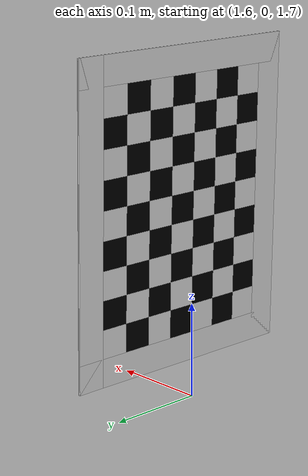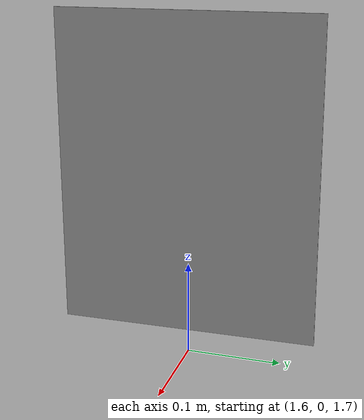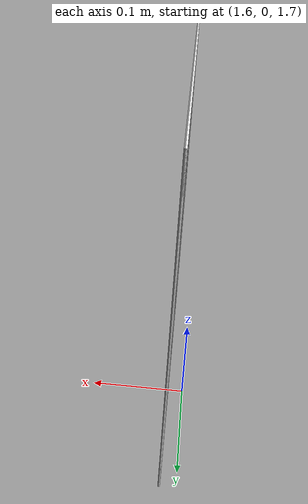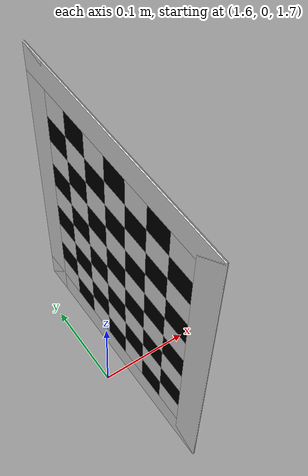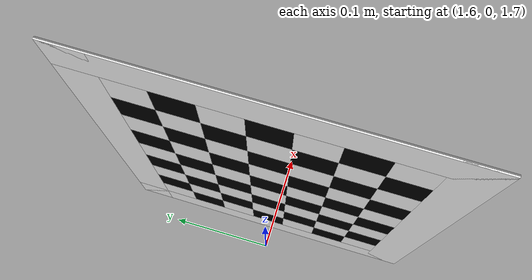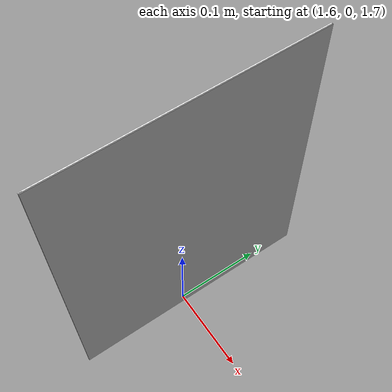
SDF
<sdf version="1.7">
 <world name="default">
  <light name="sun" type="directional">
   <pose>0 0 10 0 -0 0</pose>
   <diffuse>0.8 0.8 0.8 1</diffuse>
   <specular>0.2 0.2 0.2 1</specular>
   <attenuation>
    <range>1000</range>
    <constant>0.9</constant>
    <linear>0.01</linear>
    <quadratic>0.001</quadratic>
   </attenuation>
   <direction>-0.5 0.1 -0.9</direction>
   <spot><inner_angle>0</inner_angle><outer_angle>0</outer_angle><falloff>0</falloff></spot>
  </light>
  <model name="ground_plane">
   <static>1</static>
   <link name="link">
    <collision name="collision">
     <geometry><plane><normal>0 0 1</normal><size>100 100</size></plane></geometry>
     <surface>
      <contact><collide_bitmask>65535</collide_bitmask></contact>
      <friction><ode><mu>100</mu><mu2>50</mu2></ode></friction>
     </surface>
    </collision>
    <visual name="visual">
     <cast_shadows>0</cast_shadows>
     <geometry><plane><normal>0 0 1</normal><size>100 100</size></plane></geometry>
     <material>
      <script><uri>file://media/materials/scripts/gazebo.material</uri><name>Gazebo/Grey</name></script>
     </material>
    </visual>
   </link>
  </model>
  <gravity>0 0 -9.8</gravity>
  <magnetic_field>6e-06 2.3e-05 -4.2e-05</magnetic_field>
  <atmosphere type="adiabatic"/>
  <physics type="ode">
   <max_step_size>0.001</max_step_size>
   <real_time_factor>1</real_time_factor>
   <real_time_update_rate>1000</real_time_update_rate>
  </physics>
  <scene><ambient>0.4 0.4 0.4 1</ambient><background>0.7 0.7 0.7 1</background><shadows>1</shadows></scene>
  <spherical_coordinates>
   <surface_model>EARTH_WGS84</surface_model>
   <latitude_deg>0</latitude_deg>
   <longitude_deg>0</longitude_deg>
   <elevation>0</elevation>
   <heading_deg>0</heading_deg>
  </spherical_coordinates>
  <model name="landmark">
   <static>1</static>
   <link name="base_link">
    <visual name="back">
     <pose>0 0 0.0015 0 -0 0</pose>
     <geometry><box><size>0.33 0.27 0.001</size></box></geometry>
     <material>
      <ambient>0.5 0.5 0.5 1</ambient>
      <specular>0.5 0.5 0.5 1</specular>
      <diffuse>0.5 0.5 0.5 1</diffuse>
     </material>
    </visual>
    <inertial><mass>0.1</mass></inertial>
    <visual name="border0">
     <pose>0.15 0 0.0005 0 -0 0</pose>
     <geometry><box><size>0.03 0.27 0.001</size></box></geometry>
     <material><ambient>1 1 1 1</ambient><specular>1 1 1 1</specular><diffuse>1 1 1 1</diffuse></material>
    </visual>
    <visual name="border1">
     <pose>-0.15 0 0.0005 0 -0 0</pose>
     <geometry><box><size>0.03 0.27 0.001</size></box></geometry>
     <material><ambient>1 1 1 1</ambient><specular>1 1 1 1</specular><diffuse>1 1 1 1</diffuse></material>
    </visual>
    <visual name="border2">
     <pose>0 0.12 0.0005 0 -0 0</pose>
     <geometry><box><size>0.33 0.03 0.001</size></box></geometry>
     <material><ambient>1 1 1 1</ambient><specular>1 1 1 1</specular><diffuse>1 1 1 1</diffuse></material>
    </visual>
    <visual name="border3">
     <pose>0 -0.12 0.0005 0 -0 0</pose>
     <geometry><box><size>0.33 0.03 0.001</size></box></geometry>
     <material><ambient>1 1 1 1</ambient><specular>1 1 1 1</specular><diffuse>1 1 1 1</diffuse></material>
    </visual>
    <visual name="86">
     <pose>0.12 0.09 0.0005 0 -0 0</pose>
     <geometry><box><size>0.03 0.03 0.001</size></box></geometry>
     <material><ambient>1 1 1 1</ambient><specular>1 1 1 1</specular><diffuse>1 1 1 1</diffuse></material>
    </visual>
    <visual name="85">
     <pose>0.12 0.06 0.0005 0 -0 0</pose>
     <geometry><box><size>0.03 0.03 0.001</size></box></geometry>
     <material><ambient>0 0 0 1</ambient><specular>0 0 0 1</specular><diffuse>0 0 0 1</diffuse></material>
    </visual>
    <visual name="84">
     <pose>0.12 0.03 0.0005 0 -0 0</pose>
     <geometry><box><size>0.03 0.03 0.001</size></box></geometry>
     <material><ambient>1 1 1 1</ambient><specular>1 1 1 1</specular><diffuse>1 1 1 1</diffuse></material>
    </visual>
    <visual name="83">
     <pose>0.12 0 0.0005 0 -0 0</pose>
     <geometry><box><size>0.03 0.03 0.001</size></box></geometry>
     <material><ambient>0 0 0 1</ambient><specular>0 0 0 1</specular><diffuse>0 0 0 1</diffuse></material>
    </visual>
    <visual name="82">
     <pose>0.12 -0.03 0.0005 0 -0 0</pose>
     <geometry><box><size>0.03 0.03 0.001</size></box></geometry>
     <material><ambient>1 1 1 1</ambient><specular>1 1 1 1</specular><diffuse>1 1 1 1</diffuse></material>
    </visual>
    <visual name="81">
     <pose>0.12 -0.06 0.0005 0 -0 0</pose>
     <geometry><box><size>0.03 0.03 0.001</size></box></geometry>
     <material><ambient>0 0 0 1</ambient><specular>0 0 0 1</specular><diffuse>0 0 0 1</diffuse></material>
    </visual>
    <visual name="80">
     <pose>0.12 -0.09 0.0005 0 -0 0</pose>
     <geometry><box><size>0.03 0.03 0.001</size></box></geometry>
     <material><ambient>1 1 1 1</ambient><specular>1 1 1 1</specular><diffuse>1 1 1 1</diffuse></material>
    </visual>
    <visual name="76">
     <pose>0.09 0.09 0.0005 0 -0 0</pose>
     <geometry><box><size>0.03 0.03 0.001</size></box></geometry>
     <material><ambient>0 0 0 1</ambient><specular>0 0 0 1</specular><diffuse>0 0 0 1</diffuse></material>
    </visual>
    <visual name="75">
     <pose>0.09 0.06 0.0005 0 -0 0</pose>
     <geometry><box><size>0.03 0.03 0.001</size></box></geometry>
     <material><ambient>1 1 1 1</ambient><specular>1 1 1 1</specular><diffuse>1 1 1 1</diffuse></material>
    </visual>
    <visual name="74">
     <pose>0.09 0.03 0.0005 0 -0 0</pose>
     <geometry><box><size>0.03 0.03 0.001</size></box></geometry>
     <material><ambient>0 0 0 1</ambient><specular>0 0 0 1</specular><diffuse>0 0 0 1</diffuse></material>
    </visual>
    <visual name="73">
     <pose>0.09 0 0.0005 0 -0 0</pose>
     <geometry><box><size>0.03 0.03 0.001</size></box></geometry>
     <material><ambient>1 1 1 1</ambient><specular>1 1 1 1</specular><diffuse>1 1 1 1</diffuse></material>
    </visual>
    <visual name="72">
     <pose>0.09 -0.03 0.0005 0 -0 0</pose>
     <geometry><box><size>0.03 0.03 0.001</size></box></geometry>
     <material><ambient>0 0 0 1</ambient><specular>0 0 0 1</specular><diffuse>0 0 0 1</diffuse></material>
    </visual>
    <visual name="71">
     <pose>0.09 -0.06 0.0005 0 -0 0</pose>
     <geometry><box><size>0.03 0.03 0.001</size></box></geometry>
     <material><ambient>1 1 1 1</ambient><specular>1 1 1 1</specular><diffuse>1 1 1 1</diffuse></material>
    </visual>
    <visual name="70">
     <pose>0.09 -0.09 0.0005 0 -0 0</pose>
     <geometry><box><size>0.03 0.03 0.001</size></box></geometry>
     <material><ambient>0 0 0 1</ambient><specular>0 0 0 1</specular><diffuse>0 0 0 1</diffuse></material>
    </visual>
    <visual name="66">
     <pose>0.06 0.09 0.0005 0 -0 0</pose>
     <geometry><box><size>0.03 0.03 0.001</size></box></geometry>
     <material><ambient>1 1 1 1</ambient><specular>1 1 1 1</specular><diffuse>1 1 1 1</diffuse></material>
    </visual>
    <visual name="65">
     <pose>0.06 0.06 0.0005 0 -0 0</pose>
     <geometry><box><size>0.03 0.03 0.001</size></box></geometry>
     <material><ambient>0 0 0 1</ambient><specular>0 0 0 1</specular><diffuse>0 0 0 1</diffuse></material>
    </visual>
    <visual name="64">
     <pose>0.06 0.03 0.0005 0 -0 0</pose>
     <geometry><box><size>0.03 0.03 0.001</size></box></geometry>
     <material><ambient>1 1 1 1</ambient><specular>1 1 1 1</specular><diffuse>1 1 1 1</diffuse></material>
    </visual>
    <visual name="63">
     <pose>0.06 0 0.0005 0 -0 0</pose>
     <geometry><box><size>0.03 0.03 0.001</size></box></geometry>
     <material><ambient>0 0 0 1</ambient><specular>0 0 0 1</specular><diffuse>0 0 0 1</diffuse></material>
    </visual>
    <visual name="62">
     <pose>0.06 -0.03 0.0005 0 -0 0</pose>
     <geometry><box><size>0.03 0.03 0.001</size></box></geometry>
     <material><ambient>1 1 1 1</ambient><specular>1 1 1 1</specular><diffuse>1 1 1 1</diffuse></material>
    </visual>
    <visual name="61">
     <pose>0.06 -0.06 0.0005 0 -0 0</pose>
     <geometry><box><size>0.03 0.03 0.001</size></box></geometry>
     <material><ambient>0 0 0 1</ambient><specular>0 0 0 1</specular><diffuse>0 0 0 1</diffuse></material>
    </visual>
    <visual name="60">
     <pose>0.06 -0.09 0.0005 0 -0 0</pose>
     <geometry><box><size>0.03 0.03 0.001</size></box></geometry>
     <material><ambient>1 1 1 1</ambient><specular>1 1 1 1</specular><diffuse>1 1 1 1</diffuse></material>
    </visual>
    <visual name="56">
     <pose>0.03 0.09 0.0005 0 -0 0</pose>
     <geometry><box><size>0.03 0.03 0.001</size></box></geometry>
     <material><ambient>0 0 0 1</ambient><specular>0 0 0 1</specular><diffuse>0 0 0 1</diffuse></material>
    </visual>
    <visual name="55">
     <pose>0.03 0.06 0.0005 0 -0 0</pose>
     <geometry><box><size>0.03 0.03 0.001</size></box></geometry>
     <material><ambient>1 1 1 1</ambient><specular>1 1 1 1</specular><diffuse>1 1 1 1</diffuse></material>
    </visual>
    <visual name="54">
     <pose>0.03 0.03 0.0005 0 -0 0</pose>
     <geometry><box><size>0.03 0.03 0.001</size></box></geometry>
     <material><ambient>0 0 0 1</ambient><specular>0 0 0 1</specular><diffuse>0 0 0 1</diffuse></material>
    </visual>
    <visual name="53">
     <pose>0.03 0 0.0005 0 -0 0</pose>
     <geometry><box><size>0.03 0.03 0.001</size></box></geometry>
     <material><ambient>1 1 1 1</ambient><specular>1 1 1 1</specular><diffuse>1 1 1 1</diffuse></material>
    </visual>
    <visual name="52">
     <pose>0.03 -0.03 0.0005 0 -0 0</pose>
     <geometry><box><size>0.03 0.03 0.001</size></box></geometry>
     <material><ambient>0 0 0 1</ambient><specular>0 0 0 1</specular><diffuse>0 0 0 1</diffuse></material>
    </visual>
    <visual name="51">
     <pose>0.03 -0.06 0.0005 0 -0 0</pose>
     <geometry><box><size>0.03 0.03 0.001</size></box></geometry>
     <material><ambient>1 1 1 1</ambient><specular>1 1 1 1</specular><diffuse>1 1 1 1</diffuse></material>
    </visual>
    <visual name="50">
     <pose>0.03 -0.09 0.0005 0 -0 0</pose>
     <geometry><box><size>0.03 0.03 0.001</size></box></geometry>
     <material><ambient>0 0 0 1</ambient><specular>0 0 0 1</specular><diffuse>0 0 0 1</diffuse></material>
    </visual>
    <visual name="46">
     <pose>0 0.09 0.0005 0 -0 0</pose>
     <geometry><box><size>0.03 0.03 0.001</size></box></geometry>
     <material><ambient>1 1 1 1</ambient><specular>1 1 1 1</specular><diffuse>1 1 1 1</diffuse></material>
    </visual>
    <visual name="45">
     <pose>0 0.06 0.0005 0 -0 0</pose>
     <geometry><box><size>0.03 0.03 0.001</size></box></geometry>
     <material><ambient>0 0 0 1</ambient><specular>0 0 0 1</specular><diffuse>0 0 0 1</diffuse></material>
    </visual>
    <visual name="44">
     <pose>0 0.03 0.0005 0 -0 0</pose>
     <geometry><box><size>0.03 0.03 0.001</size></box></geometry>
     <material><ambient>1 1 1 1</ambient><specular>1 1 1 1</specular><diffuse>1 1 1 1</diffuse></material>
    </visual>
    <visual name="43">
     <pose>0 0 0.0005 0 -0 0</pose>
     <geometry><box><size>0.03 0.03 0.001</size></box></geometry>
     <material><ambient>0 0 0 1</ambient><specular>0 0 0 1</specular><diffuse>0 0 0 1</diffuse></material>
    </visual>
    <visual name="42">
     <pose>0 -0.03 0.0005 0 -0 0</pose>
     <geometry><box><size>0.03 0.03 0.001</size></box></geometry>
     <material><ambient>1 1 1 1</ambient><specular>1 1 1 1</specular><diffuse>1 1 1 1</diffuse></material>
    </visual>
    <visual name="41">
     <pose>0 -0.06 0.0005 0 -0 0</pose>
     <geometry><box><size>0.03 0.03 0.001</size></box></geometry>
     <material><ambient>0 0 0 1</ambient><specular>0 0 0 1</specular><diffuse>0 0 0 1</diffuse></material>
    </visual>
    <visual name="40">
     <pose>0 -0.09 0.0005 0 -0 0</pose>
     <geometry><box><size>0.03 0.03 0.001</size></box></geometry>
     <material><ambient>1 1 1 1</ambient><specular>1 1 1 1</specular><diffuse>1 1 1 1</diffuse></material>
    </visual>
    <visual name="36">
     <pose>-0.03 0.09 0.0005 0 -0 0</pose>
     <geometry><box><size>0.03 0.03 0.001</size></box></geometry>
     <material><ambient>0 0 0 1</ambient><specular>0 0 0 1</specular><diffuse>0 0 0 1</diffuse></material>
    </visual>
    <visual name="35">
     <pose>-0.03 0.06 0.0005 0 -0 0</pose>
     <geometry><box><size>0.03 0.03 0.001</size></box></geometry>
     <material><ambient>1 1 1 1</ambient><specular>1 1 1 1</specular><diffuse>1 1 1 1</diffuse></material>
    </visual>
    <visual name="34">
     <pose>-0.03 0.03 0.0005 0 -0 0</pose>
     <geometry><box><size>0.03 0.03 0.001</size></box></geometry>
     <material><ambient>0 0 0 1</ambient><specular>0 0 0 1</specular><diffuse>0 0 0 1</diffuse></material>
    </visual>
    <visual name="33">
     <pose>-0.03 0 0.0005 0 -0 0</pose>
     <geometry><box><size>0.03 0.03 0.001</size></box></geometry>
     <material><ambient>1 1 1 1</ambient><specular>1 1 1 1</specular><diffuse>1 1 1 1</diffuse></material>
    </visual>
    <visual name="32">
     <pose>-0.03 -0.03 0.0005 0 -0 0</pose>
     <geometry><box><size>0.03 0.03 0.001</size></box></geometry>
     <material><ambient>0 0 0 1</ambient><specular>0 0 0 1</specular><diffuse>0 0 0 1</diffuse></material>
    </visual>
    <visual name="31">
     <pose>-0.03 -0.06 0.0005 0 -0 0</pose>
     <geometry><box><size>0.03 0.03 0.001</size></box></geometry>
     <material><ambient>1 1 1 1</ambient><specular>1 1 1 1</specular><diffuse>1 1 1 1</diffuse></material>
    </visual>
    <visual name="30">
     <pose>-0.03 -0.09 0.0005 0 -0 0</pose>
     <geometry><box><size>0.03 0.03 0.001</size></box></geometry>
     <material><ambient>0 0 0 1</ambient><specular>0 0 0 1</specular><diffuse>0 0 0 1</diffuse></material>
    </visual>
    <visual name="26">
     <pose>-0.06 0.09 0.0005 0 -0 0</pose>
     <geometry><box><size>0.03 0.03 0.001</size></box></geometry>
     <material><ambient>1 1 1 1</ambient><specular>1 1 1 1</specular><diffuse>1 1 1 1</diffuse></material>
    </visual>
    <visual name="25">
     <pose>-0.06 0.06 0.0005 0 -0 0</pose>
     <geometry><box><size>0.03 0.03 0.001</size></box></geometry>
     <material><ambient>0 0 0 1</ambient><specular>0 0 0 1</specular><diffuse>0 0 0 1</diffuse></material>
    </visual>
    <visual name="24">
     <pose>-0.06 0.03 0.0005 0 -0 0</pose>
     <geometry><box><size>0.03 0.03 0.001</size></box></geometry>
     <material><ambient>1 1 1 1</ambient><specular>1 1 1 1</specular><diffuse>1 1 1 1</diffuse></material>
    </visual>
    <visual name="23">
     <pose>-0.06 0 0.0005 0 -0 0</pose>
     <geometry><box><size>0.03 0.03 0.001</size></box></geometry>
     <material><ambient>0 0 0 1</ambient><specular>0 0 0 1</specular><diffuse>0 0 0 1</diffuse></material>
    </visual>
    <visual name="22">
     <pose>-0.06 -0.03 0.0005 0 -0 0</pose>
     <geometry><box><size>0.03 0.03 0.001</size></box></geometry>
     <material><ambient>1 1 1 1</ambient><specular>1 1 1 1</specular><diffuse>1 1 1 1</diffuse></material>
    </visual>
    <visual name="21">
     <pose>-0.06 -0.06 0.0005 0 -0 0</pose>
     <geometry><box><size>0.03 0.03 0.001</size></box></geometry>
     <material><ambient>0 0 0 1</ambient><specular>0 0 0 1</specular><diffuse>0 0 0 1</diffuse></material>
    </visual>
    <visual name="20">
     <pose>-0.06 -0.09 0.0005 0 -0 0</pose>
     <geometry><box><size>0.03 0.03 0.001</size></box></geometry>
     <material><ambient>1 1 1 1</ambient><specular>1 1 1 1</specular><diffuse>1 1 1 1</diffuse></material>
    </visual>
    <visual name="16">
     <pose>-0.09 0.09 0.0005 0 -0 0</pose>
     <geometry><box><size>0.03 0.03 0.001</size></box></geometry>
     <material><ambient>0 0 0 1</ambient><specular>0 0 0 1</specular><diffuse>0 0 0 1</diffuse></material>
    </visual>
    <visual name="15">
     <pose>-0.09 0.06 0.0005 0 -0 0</pose>
     <geometry><box><size>0.03 0.03 0.001</size></box></geometry>
     <material><ambient>1 1 1 1</ambient><specular>1 1 1 1</specular><diffuse>1 1 1 1</diffuse></material>
    </visual>
    <visual name="14">
     <pose>-0.09 0.03 0.0005 0 -0 0</pose>
     <geometry><box><size>0.03 0.03 0.001</size></box></geometry>
     <material><ambient>0 0 0 1</ambient><specular>0 0 0 1</specular><diffuse>0 0 0 1</diffuse></material>
    </visual>
    <visual name="13">
     <pose>-0.09 0 0.0005 0 -0 0</pose>
     <geometry><box><size>0.03 0.03 0.001</size></box></geometry>
     <material><ambient>1 1 1 1</ambient><specular>1 1 1 1</specular><diffuse>1 1 1 1</diffuse></material>
    </visual>
    <visual name="12">
     <pose>-0.09 -0.03 0.0005 0 -0 0</pose>
     <geometry><box><size>0.03 0.03 0.001</size></box></geometry>
     <material><ambient>0 0 0 1</ambient><specular>0 0 0 1</specular><diffuse>0 0 0 1</diffuse></material>
    </visual>
    <visual name="11">
     <pose>-0.09 -0.06 0.0005 0 -0 0</pose>
     <geometry><box><size>0.03 0.03 0.001</size></box></geometry>
     <material><ambient>1 1 1 1</ambient><specular>1 1 1 1</specular><diffuse>1 1 1 1</diffuse></material>
    </visual>
    <visual name="10">
     <pose>-0.09 -0.09 0.0005 0 -0 0</pose>
     <geometry><box><size>0.03 0.03 0.001</size></box></geometry>
     <material><ambient>0 0 0 1</ambient><specular>0 0 0 1</specular><diffuse>0 0 0 1</diffuse></material>
    </visual>
    <visual name="06">
     <pose>-0.12 0.09 0.0005 0 -0 0</pose>
     <geometry><box><size>0.03 0.03 0.001</size></box></geometry>
     <material><ambient>1 1 1 1</ambient><specular>1 1 1 1</specular><diffuse>1 1 1 1</diffuse></material>
    </visual>
    <visual name="05">
     <pose>-0.12 0.06 0.0005 0 -0 0</pose>
     <geometry><box><size>0.03 0.03 0.001</size></box></geometry>
     <material><ambient>0 0 0 1</ambient><specular>0 0 0 1</specular><diffuse>0 0 0 1</diffuse></material>
    </visual>
    <visual name="04">
     <pose>-0.12 0.03 0.0005 0 -0 0</pose>
     <geometry><box><size>0.03 0.03 0.001</size></box></geometry>
     <material><ambient>1 1 1 1</ambient><specular>1 1 1 1</specular><diffuse>1 1 1 1</diffuse></material>
    </visual>
    <visual name="03">
     <pose>-0.12 0 0.0005 0 -0 0</pose>
     <geometry><box><size>0.03 0.03 0.001</size></box></geometry>
     <material><ambient>0 0 0 1</ambient><specular>0 0 0 1</specular><diffuse>0 0 0 1</diffuse></material>
    </visual>
    <visual name="02">
     <pose>-0.12 -0.03 0.0005 0 -0 0</pose>
     <geometry><box><size>0.03 0.03 0.001</size></box></geometry>
     <material><ambient>1 1 1 1</ambient><specular>1 1 1 1</specular><diffuse>1 1 1 1</diffuse></material>
    </visual>
    <visual name="01">
     <pose>-0.12 -0.06 0.0005 0 -0 0</pose>
     <geometry><box><size>0.03 0.03 0.001</size></box></geometry>
     <material><ambient>0 0 0 1</ambient><specular>0 0 0 1</specular><diffuse>0 0 0 1</diffuse></material>
    </visual>
    <visual name="00">
     <pose>-0.12 -0.09 0.0005 0 -0 0</pose>
     <geometry><box><size>0.03 0.03 0.001</size></box></geometry>
     <material><ambient>1 1 1 1</ambient><specular>1 1 1 1</specular><diffuse>1 1 1 1</diffuse></material>
    </visual>
   </link>
   <pose>1.61267 0.00081 1.89836 -0.519027 -1.55516 -2.62251</pose>
  </model>
 </world>
</sdf>
